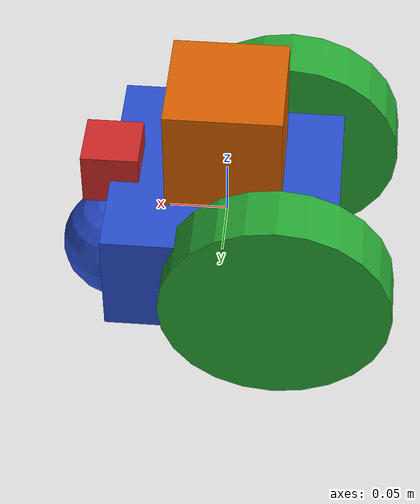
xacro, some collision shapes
<?xml version='1.0'?>

<robot name="my_robot" xmlns:xacro="http://www.ros.org/wiki/xacro">

  <link name="robot_footprint"></link>
  <xacro:include filename="$(find my_robot)/urdf/my_robot.gazebo" />

  <joint name="robot_footprint_joint" type="fixed">
    <origin xyz="0 0 0" rpy="0 0 0" />
    <parent link="robot_footprint"/>
    <child link="chassis" />
  </joint>

  <link name='chassis'>
    <pose>0 0 0.1 0 0 0</pose>

    <inertial>
      <mass value="15.0"/>
      <origin xyz="0.0 0 0" rpy=" 0 0 0"/>
      <inertia
          ixx="0.1" ixy="0" ixz="0"
          iyy="0.1" iyz="0"
          izz="0.1"
      />
    </inertial>

    <collision name='collision'>
      <origin xyz="0 0 0" rpy=" 0 0 0"/>
      <geometry>
        <box size=".2 .2 .1"/>
      </geometry>
    </collision>

    <visual name='chassis_visual'>
      <origin xyz="0 0 0" rpy=" 0 0 0"/>
      <geometry>
        <box size=".2 .2 .1"/>
      </geometry>
    </visual>

    <collision name='front_caster_collision'>
      <origin xyz="0.1 0 -0.05" rpy=" 0 0 0"/>
      <geometry>
        <sphere radius="0.0499"/>
      </geometry>
    </collision>

    <visual name='front_caster_visual'>
      <origin xyz="0.1 0 -0.05" rpy=" 0 0 0"/>
      <geometry>
        <sphere radius="0.05"/>
      </geometry>
    </visual>

  </link>

  <link name='right_wheel'>
    <inertial>
        <mass value="5.0"/>
        <origin xyz="0 0 0" rpy=" 0 0 0"/>
        <inertia
            ixx="0.1" ixy="0" ixz="0"
            iyy="0.1" iyz="0"
            izz="0.1"
        />
    </inertial>

    <collision name='collision_right_wheel'>
      <origin xyz="0 0 0" rpy=" 0 1.5707 1.5707"/>
      <geometry>
        <cylinder radius="0.1" length="0.05"/>
      </geometry>
    </collision>

    <visual name='visual_right_wheel'>
      <origin xyz="0 0 0" rpy=" 0 1.5707 1.5707"/>
      <geometry>
        <cylinder radius="0.1" length="0.05"/>
      </geometry>
    </visual>
  </link>

  <joint type="continuous" name="right_wheel_hinge">
    <origin xyz="-0.05 -0.1 0" rpy="0 0 0"/>
    <child link="right_wheel"/>
    <parent link="chassis"/>
    <axis xyz="0 1 0" rpy="0 0 0"/>
    <limit effort="10000" velocity="1000"/>
    <dynamics damping="1.0" friction="1.0"/>
  </joint>

  <link name='left_wheel'>
    <inertial>
        <mass value="5.0"/>
        <origin xyz="0.0 0 0" rpy=" 0 0 0"/>
        <inertia
            ixx="0.1" ixy="0" ixz="0"
            iyy="0.1" iyz="0"
            izz="0.1"
        />
    </inertial>

    <collision name='collision_left_wheel'>
      <origin xyz="0 0 0" rpy=" 0 1.5707 1.5707"/>
      <geometry>
        <cylinder radius="0.1" length="0.05"/>
      </geometry>
    </collision>

    <visual name='visual_left_wheel'>
      <origin xyz="0 0 0" rpy=" 0 1.5707 1.5707"/>
      <geometry>
        <cylinder radius="0.1" length="0.05"/>
      </geometry>
    </visual>
  </link>

  <joint type="continuous" name="left_wheel_hinge">
    <origin xyz="-0.05 0.1 0" rpy="0 0 0"/>
    <child link="left_wheel"/>
    <parent link="chassis"/>
    <axis xyz="0 1 0" rpy="0 0 0"/>
    <limit effort="10000" velocity="1000"/>
    <dynamics damping="1.0" friction="1.0"/>
  </joint>

  <link name='camera'>
    <inertial>
      <mass value="0.1"/>
      <origin xyz="0 0 0" rpy="0 0 0"/>
      <inertia
          ixx="1e-6" ixy="0" ixz="0"
          iyy="1e-6" iyz="0"
          izz="1e-6"
      />
    </inertial>

    <collision name='collision_camera'>
      <origin xyz="0 0 0" rpy=" 0 0 0"/>
      <geometry>
        <box size="0.05 0.05 0.05"/>
      </geometry>
    </collision>

    <visual name='visual_camera'>
      <origin xyz="0 0 0" rpy=" 0 0 0"/>
      <geometry>
        <box size="0.05 0.05 0.05"/>
      </geometry>
    </visual>
  </link>

  <joint type="fixed" name="camera_joint">
    <origin xyz="0.1 0 0.05" rpy="0 0 0"/>
    <child link="camera"/>
    <parent link="chassis"/>
    <axis xyz="0 1 0" rpy="0 0 0"/>
  </joint>

  <link name='hokuyo'>
    <inertial>
      <mass value="1e-5"/>
      <origin xyz="0 0 0" rpy="0 0 0"/>
      <inertia
          ixx="1e-6" ixy="0" ixz="0"
          iyy="1e-6" iyz="0"
          izz="1e-6"
      />
    </inertial>

    <collision name='collision_hokuyo'>
      <origin xyz="0 0 0" rpy=" 0 0 0"/>
      <geometry>
        <box size="0.1 0.1 0.1"/>
      </geometry>
    </collision>

    <visual name='visual_hokuyo'>
      <origin xyz="0 0 0" rpy=" 0 0 0"/>
      <geometry>
        <mesh filename="package://my_robot/meshes/hokuyo.dae"/>
      </geometry>
    </visual>
  </link>

  <joint type="fixed" name="hokuyo_joint">
    <origin xyz="0.0 0 0.1" rpy="0 0 0"/>
    <child link="hokuyo"/>
    <parent link="chassis"/>
    <axis xyz="0 1 0" rpy="0 0 0"/>
  </joint>

  <joint name="camera_optical_joint" type="fixed">
    <origin xyz="0.1 0 0.1" rpy="-1.5707 0 -1.5707"/>
    <parent link="camera"/>
    <child link="camera_link_optical"/>
  </joint>

  <link name="camera_link_optical">
  </link>

  <!-- Material Descriptions -->
  <gazebo reference="chassis">
      <material>Gazebo/Blue</material>
  </gazebo>

  <gazebo reference="left_wheel">
    <material>Gazebo/Green</material>
  </gazebo>

  <gazebo reference="right_wheel">
      <material>Gazebo/Green</material>
  </gazebo>

  <gazebo reference="camera">
      <material>Gazebo/Red</material>
  </gazebo>

</robot>
